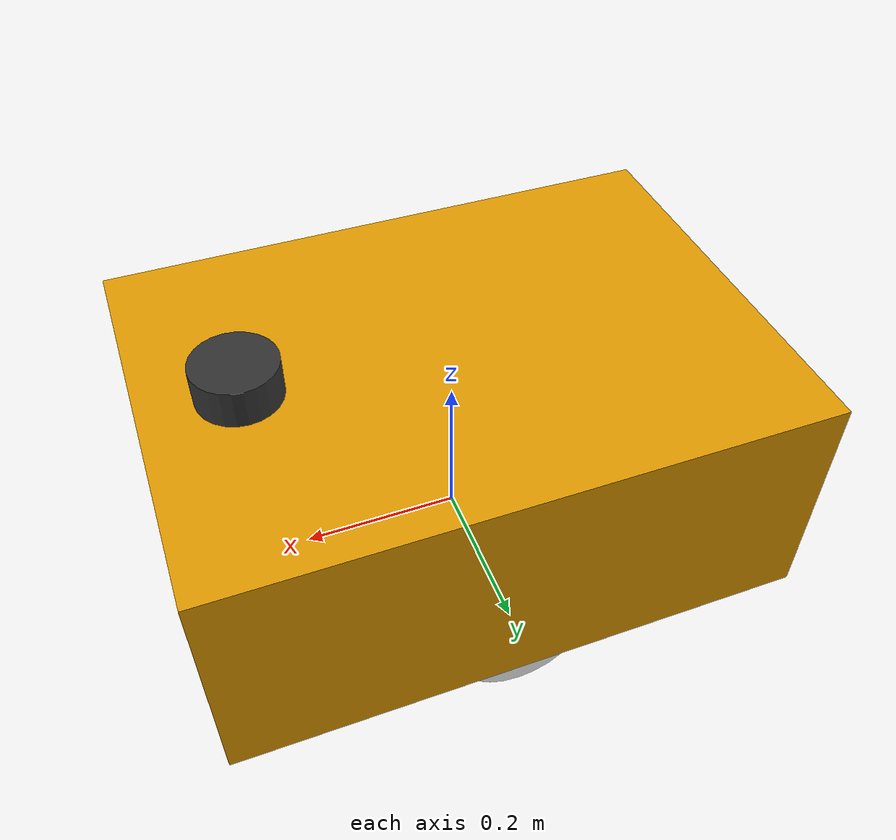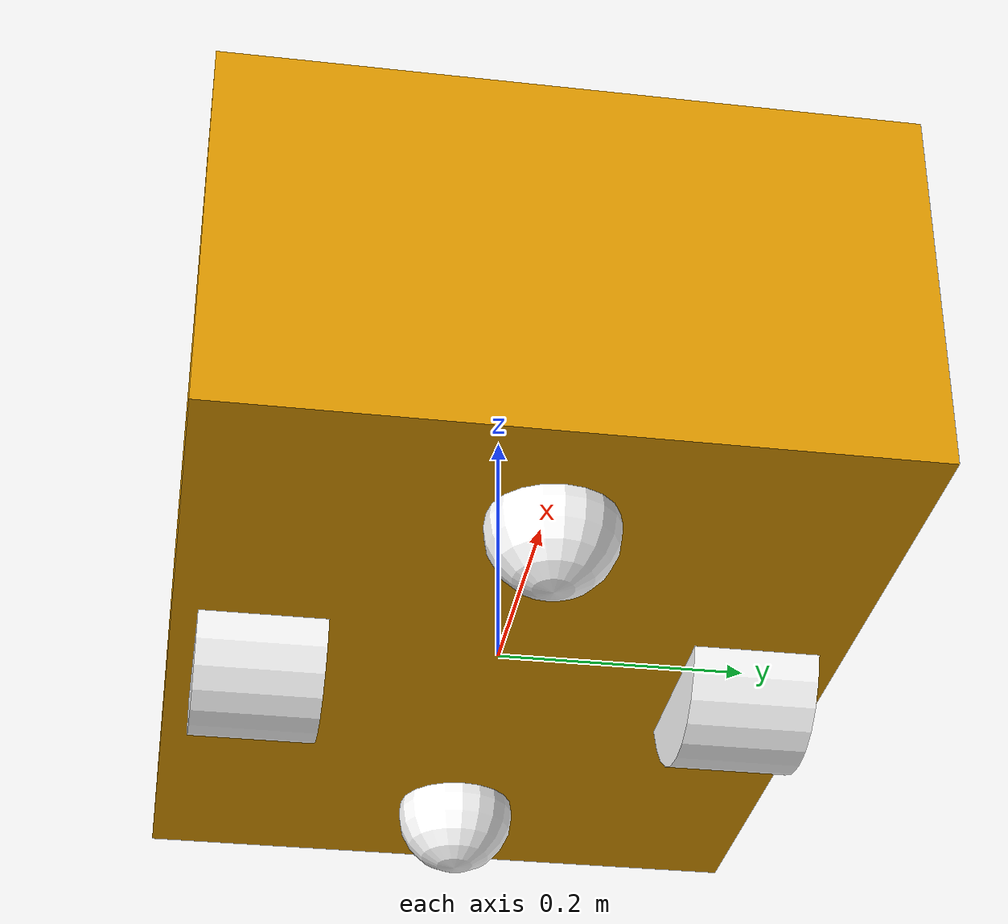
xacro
<?xml version="1.0"?>
<robot name="GoCart180"
    xmlns:xacro="http://ros.org/wiki/xacro">

    <xacro:arg name="robot_name" default="GoCart180"/>

    <!-- Define robot constants -->
    <xacro:property name="base_width" value="0.525"/>
    <xacro:property name="base_length" value="0.73"/>
    <xacro:property name="base_height" value="0.30"/>

    <xacro:property name="wheel_radius" value="0.08"/>
    <xacro:property name="wheel_width" value="0.10"/>

    <xacro:property name="wheel_xoff" value="0.0"/>
    <xacro:property name="wheel_ygap" value="-0.02"/>
    <xacro:property name="wheel_zoff" value="-0.13"/>

    <xacro:property name="caster_radius" value="0.05"/>
    <xacro:property name="caster_xoff" value="0.25"/>

    <xacro:property name="imu_xoff" value="0.0"/>
    <xacro:property name="imu_yoff" value="0.0"/>
    <xacro:property name="imu_zoff" value="0.09"/>

    <xacro:property name="laser_xoff" value="0.25"/>
    <xacro:property name="laser_yoff" value="0.0"/>
    <xacro:property name="laser_zoff" value="0.30"/>

    <!-- Define some commonly used intertial properties  -->
    <xacro:macro name="box_inertia" params="m w h d">
        <inertial>
            <origin xyz="0 0 0" rpy="${pi/2} 0 ${pi/2}"/>
            <mass value="${m}"/>
            <inertia ixx="${(m/12) * (h*h + d*d)}" ixy="0.0" ixz="0.0" iyy="${(m/12) * (w*w + d*d)}" iyz="0.0" izz="${(m/12) * (w*w + h*h)}"/>
        </inertial>
    </xacro:macro>

    <xacro:macro name="cylinder_inertia" params="m r h">
        <inertial>
            <origin xyz="0 0 0" rpy="${pi/2} 0 0" />
            <mass value="${m}"/>
            <inertia ixx="${(m/12) * (3*r*r + h*h)}" ixy = "0" ixz = "0" iyy="${(m/12) * (3*r*r + h*h)}" iyz = "0" izz="${(m/2) * (r*r)}"/>
        </inertial>
    </xacro:macro>

    <xacro:macro name="sphere_inertia" params="m r">
        <inertial>
            <mass value="${m}"/>
            <inertia ixx="${(2/5) * m * (r*r)}" ixy="0.0" ixz="0.0" iyy="${(2/5) * m * (r*r)}" iyz="0.0" izz="${(2/5) * m * (r*r)}"/>
        </inertial>
    </xacro:macro>

    <!-- Robot Base -->
    <link name="base_link">
        <visual>
            <origin xyz="${-(wheel_xoff)} 0 ${-(wheel_zoff)}" rpy="0 0 0" />
            <geometry>
                <box size="${base_length} ${base_width} ${base_height}"/>
            </geometry>
        </visual>

        <collision>
            <origin xyz="${-(wheel_xoff)} 0 ${-(wheel_zoff)}" rpy="0 0 0" />
            <geometry>
                <box size="${base_length} ${base_width} ${base_height}"/>
            </geometry>
        </collision>

        <xacro:box_inertia m="1" w="${base_width}" d="${base_length}" h="${base_height}"/>
    </link>

    <!-- Wheels-->
    <xacro:macro name="wheel" params="prefix y_reflect">
        <link name="${prefix}_link">
            <visual>
                <origin xyz="0 0 0" rpy="0 0 0"/>
                <geometry>
                    <cylinder radius="${wheel_radius}" length="${wheel_width}"/>
                </geometry>
                <material name="Black">
                    <color rgba="1.0 1.0 1.0 1.0"/>
                </material>
            </visual>

            <collision>
                <origin xyz="0 0 0" rpy="0 0 0"/>
                <geometry>
                    <cylinder radius="${wheel_radius}" length="${wheel_width}"/>
                </geometry>
            </collision>

            <xacro:cylinder_inertia m="1" r="${wheel_radius}" h="${wheel_width}"/>
        </link>

        <joint name="${prefix}_joint" type="continuous">
            <parent link="base_link"/>
            <child link="${prefix}_link"/>
            <origin xyz="0 ${y_reflect*(base_width/2-wheel_width/2+wheel_ygap)} 0" rpy="${-pi/2} 0 0"/>
            <axis xyz="0 0 1"/>
            <gazebo reference="${prefix}_link">
                <mu1>1.0</mu1>
                <mu2>0.9</mu2>
                <slip1>0.01</slip1>
                <slip2>0.01</slip2>
                <fdir1>0 0 1</fdir1>
            </gazebo>
        </joint>

        <gazebo reference="${prefix}_link">
            <material name = "Black">Gazebo/Black</material>
        </gazebo>
    </xacro:macro>

    <xacro:wheel prefix="left_wheel" y_reflect="1"/>
    <xacro:wheel prefix="right_wheel" y_reflect="-1"/>

    <xacro:macro name="caster" params="prefix x_reflect">
        <link name="${prefix}_caster">
            <visual>
                <geometry>
                    <sphere radius="${caster_radius}"/>
                </geometry>
                <material name="Black">
                    <color rgba="1.0 1.0 1.0 1.0"/>
                </material>
            </visual>

            <collision>
                <origin xyz="0 0 0" rpy="0 0 0"/>
                <geometry>
                    <sphere radius="${caster_radius}"/>
                </geometry>
            </collision>

            <xacro:sphere_inertia m="1" r="${caster_radius}"/>
        </link>

        <joint name="${prefix}_caster_joint" type="continuous">
            <parent link="base_link"/>
            <child link="${prefix}_caster"/>
            <origin xyz="${-(wheel_xoff)+x_reflect*caster_xoff} 0.0 ${-(base_height/2)+caster_radius-(wheel_radius-(base_height/2))}" rpy="0 0 0"/>
        </joint>

        <gazebo reference="${prefix}_caster">
            <material name = "Black">Gazebo/Black</material>
        </gazebo>
    </xacro:macro>

    <xacro:caster prefix="front" x_reflect="1"/>
    <xacro:caster prefix="rear" x_reflect="-1"/>

    <!-- Lidar -->
    <link name="laser">
        <inertial>
            <origin xyz="0 0 0" rpy="0 0 0"/>
            <mass value="0.125"/>
            <inertia ixx="0.001" ixy="0" ixz="0" iyy="0.001" iyz="0" izz="0.001" />
        </inertial>

        <collision>
            <origin xyz="0 0 0" rpy="0 0 0"/>
            <geometry>
                <cylinder radius="0.0508" length="0.055"/>
            </geometry>
        </collision>

        <visual>
            <origin xyz="0 0 0" rpy="0 0 0"/>
            <geometry>
                <cylinder radius="0.0508" length="0.055"/>
            </geometry>
            <material name="Grey">
                <color rgba="0.2 0.2 0.2 1.0"/>
            </material>
        </visual>
    </link>

    <joint name="laser_joint" type="fixed">
        <parent link="base_link"/>
        <child link="laser"/>
        <origin xyz="${laser_xoff} ${laser_yoff} ${laser_zoff}" rpy="0 0 0"/>
    </joint>

    <gazebo reference="laser">
        <material name = "Grey">Gazebo/Grey</material>
        <sensor name="lidar" type="ray">
            <always_on>true</always_on>
            <visualize>false</visualize>
            <update_rate>50</update_rate>
            <ray>
                <scan>
                    <horizontal>
                        <samples>1080</samples>
                        <resolution>1.000000</resolution>
                        <min_angle>-2.26889</min_angle>
                        <max_angle>2.26889</max_angle>
                    </horizontal>
                </scan>
                <range>
                    <min>0.08</min>
                    <max>30</max>
                    <resolution>0.01</resolution>
                </range>
                <noise>
                    <type>gaussian</type>
                    <mean>0.0</mean>
                    <stddev>0.0</stddev>
                </noise>
            </ray>
            <plugin name="scan" filename="libgazebo_ros_ray_sensor.so">
                <ros>
                    <remapping>~/out:=scan</remapping>
                </ros>
                <output_type>sensor_msgs/LaserScan</output_type>
                <frame_name>$(arg robot_name)/laser</frame_name>
            </plugin>
        </sensor>
    </gazebo>

    <!-- Diff Drive -->
    <gazebo>
        <plugin name='diff_drive' filename='libgazebo_ros_diff_drive.so'>
            <update_rate>30</update_rate>

            <!-- wheels -->
            <left_joint>left_wheel_joint</left_joint>
            <right_joint>right_wheel_joint</right_joint>

            <!-- kinematics -->
            <wheel_separation>0.486</wheel_separation>
            <wheel_diameter>0.16</wheel_diameter>

            <!-- limits -->
            <max_wheel_torque>10</max_wheel_torque>
            <max_wheel_acceleration>1.0</max_wheel_acceleration>

            <command_topic>cmd_vel</command_topic>

            <!-- output -->
            <publish_odom>true</publish_odom>
            <publish_odom_tf>false</publish_odom_tf>
            <publish_wheel_tf>false</publish_wheel_tf>

            <odometry_topic>odom</odometry_topic>
            <odometry_frame>$(arg robot_name)/odom</odometry_frame>
            <robot_base_frame>$(arg robot_name)/base_link</robot_base_frame>
        </plugin>
    </gazebo>
</robot>
